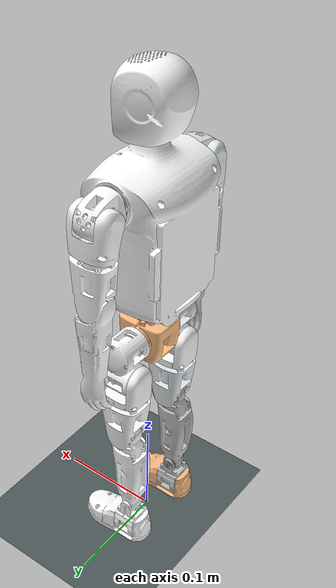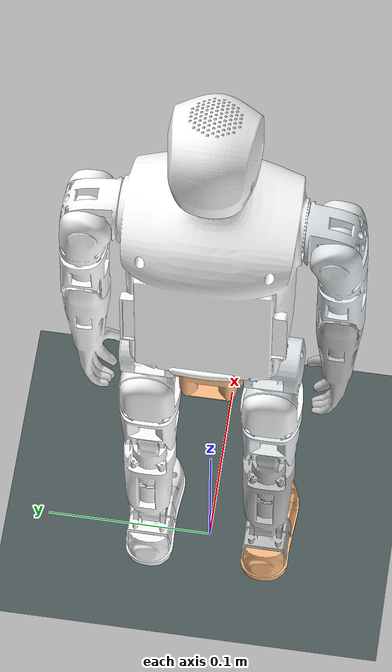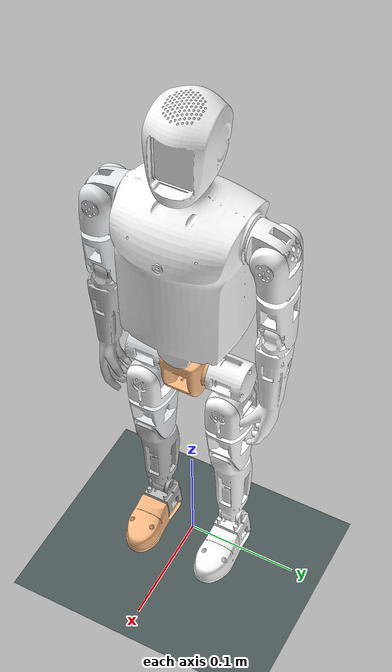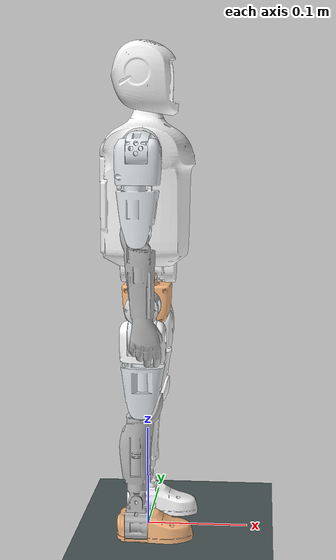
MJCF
<?xml version='1.0' encoding='utf-8'?>
<mujoco model="g0_unitree_mujoco_style">
  <option timestep="0.005" gravity="0 0 -9.81" />
  <compiler angle="radian" />
  <asset>
    <mesh name="base_link" content_type="model/stl" file="../../source/g0_robot_lab/g0_robot_lab/assets/robots/g0/meshes/base_link.STL" />
    <mesh name="waist_yaw_link" content_type="model/stl" file="../../source/g0_robot_lab/g0_robot_lab/assets/robots/g0/meshes/waist_yaw_link.STL" />
    <mesh name="torso_link" content_type="model/stl" file="../../source/g0_robot_lab/g0_robot_lab/assets/robots/g0/meshes/torso_link.STL" />
    <mesh name="l_shoulder_pitch_link" content_type="model/stl" file="../../source/g0_robot_lab/g0_robot_lab/assets/robots/g0/meshes/l_shoulder_pitch_link.STL" />
    <mesh name="l_shoulder_roll_link" content_type="model/stl" file="../../source/g0_robot_lab/g0_robot_lab/assets/robots/g0/meshes/l_shoulder_roll_link.STL" />
    <mesh name="l_shoulder_yaw_link" content_type="model/stl" file="../../source/g0_robot_lab/g0_robot_lab/assets/robots/g0/meshes/l_shoulder_yaw_link.STL" />
    <mesh name="l_forearm_link" content_type="model/stl" file="../../source/g0_robot_lab/g0_robot_lab/assets/robots/g0/meshes/l_forearm_link.STL" />
    <mesh name="r_shoulder_pitch_link" content_type="model/stl" file="../../source/g0_robot_lab/g0_robot_lab/assets/robots/g0/meshes/r_shoulder_pitch_link.STL" />
    <mesh name="r_shoulder_roll_link" content_type="model/stl" file="../../source/g0_robot_lab/g0_robot_lab/assets/robots/g0/meshes/r_shoulder_roll_link.STL" />
    <mesh name="r_shoulder_yaw_link" content_type="model/stl" file="../../source/g0_robot_lab/g0_robot_lab/assets/robots/g0/meshes/r_shoulder_yaw_link.STL" />
    <mesh name="r_forearm_link" content_type="model/stl" file="../../source/g0_robot_lab/g0_robot_lab/assets/robots/g0/meshes/r_forearm_link.STL" />
    <mesh name="l_hip_pitch_link" content_type="model/stl" file="../../source/g0_robot_lab/g0_robot_lab/assets/robots/g0/meshes/l_hip_pitch_link.STL" />
    <mesh name="l_hip_roll_link" content_type="model/stl" file="../../source/g0_robot_lab/g0_robot_lab/assets/robots/g0/meshes/l_hip_roll_link.STL" />
    <mesh name="l_thigh_link" content_type="model/stl" file="../../source/g0_robot_lab/g0_robot_lab/assets/robots/g0/meshes/l_thigh_link.STL" />
    <mesh name="l_calf_link" content_type="model/stl" file="../../source/g0_robot_lab/g0_robot_lab/assets/robots/g0/meshes/l_calf_link.STL" />
    <mesh name="l_ankle_pitch_link" content_type="model/stl" file="../../source/g0_robot_lab/g0_robot_lab/assets/robots/g0/meshes/l_ankle_pitch_link.STL" />
    <mesh name="l_foot_link" content_type="model/stl" file="../../source/g0_robot_lab/g0_robot_lab/assets/robots/g0/meshes/l_foot_link.STL" />
    <mesh name="r_hip_pitch_link" content_type="model/stl" file="../../source/g0_robot_lab/g0_robot_lab/assets/robots/g0/meshes/r_hip_pitch_link.STL" />
    <mesh name="r_hip_roll_link" content_type="model/stl" file="../../source/g0_robot_lab/g0_robot_lab/assets/robots/g0/meshes/r_hip_roll_link.STL" />
    <mesh name="r_thigh_link" content_type="model/stl" file="../../source/g0_robot_lab/g0_robot_lab/assets/robots/g0/meshes/r_thigh_link.STL" />
    <mesh name="r_calf_link" content_type="model/stl" file="../../source/g0_robot_lab/g0_robot_lab/assets/robots/g0/meshes/r_calf_link.STL" />
    <mesh name="r_ankle_pitch_link" content_type="model/stl" file="../../source/g0_robot_lab/g0_robot_lab/assets/robots/g0/meshes/r_ankle_pitch_link.STL" />
    <mesh name="r_foot_link" content_type="model/stl" file="../../source/g0_robot_lab/g0_robot_lab/assets/robots/g0/meshes/r_foot_link.STL" />
  </asset>
  <worldbody>
    <geom name="ground" type="plane" size="2 2 0.05" rgba="0.3 0.35 0.35 1" contype="1" conaffinity="2" />
    <body name="base_link" pos="0 0 0.23">
      <freejoint name="root" />
      <geom type="mesh" rgba="0.988235 0.737255 0.517647 1" mesh="base_link" contype="2" conaffinity="1" />
      <body name="waist_yaw_link" pos="0 1.38738e-05 0.0194282">
        <inertial pos="3.06768e-05 -1.46125e-05 -0.0128823" quat="0.999999 -0.000574074 -0.000872455 -0.000163067" mass="0.0352857" diaginertia="4.65159e-06 4.40144e-06 2.3235e-06" />
        <joint name="waist_yaw_joint" pos="0 0 0" axis="0 0 -1" range="-1.2 1.2" actuatorfrcrange="-2 2" damping="0.08" armature="0.0015" />
        <geom type="mesh" rgba="0.988235 0.737255 0.517647 1" mesh="waist_yaw_link" contype="2" conaffinity="1" />
        <body name="torso_link" pos="0.019949 -2.77476e-05 0.014501">
          <inertial pos="-0.02639 -6.1e-05 0.071032" quat="0.654879 -0.0187365 -0.0179598 0.755288" mass="0.863095" diaginertia="0.0174216 0.0174054 0.0162118" />
          <joint name="waist_roll_joint" pos="0 0 0" axis="-1 0 0" range="-0.5 0.5" actuatorfrcrange="-2 2" damping="0.08" armature="0.0015" />
          <geom type="mesh" rgba="1 1 1 1" mesh="torso_link" contype="2" conaffinity="1" />
          <body name="l_shoulder_pitch_link" pos="-0.0199821 0.049803 0.117056">
            <inertial pos="0.000100024 -0.0111807 -0.000210858" quat="0.725101 0.688628 -0.00345533 0.00288736" mass="0.0379707" diaginertia="5.23076e-06 4.74163e-06 2.72019e-06" />
            <joint name="l_shoulder_pitch_joint" pos="0 0 0" axis="0 -1 0" range="-1.2 1.2" actuatorfrcrange="-2 2" damping="0.06" armature="0.0015" />
            <geom type="mesh" rgba="1 1 1 1" mesh="l_shoulder_pitch_link" contype="2" conaffinity="1" />
            <body name="l_shoulder_roll_link" pos="0.017974 0.0187407 -0.00533316">
              <inertial pos="-0.0174665 0.000725897 -0.00473068" quat="0.517522 0.475153 0.357938 0.615046" mass="0.0467895" diaginertia="6.65599e-06 6.01767e-06 4.15197e-06" />
              <joint name="l_shoulder_roll_joint" pos="0 0 0" axis="-1 0 0" range="-1.2 0" actuatorfrcrange="-2 2" damping="0.06" armature="0.0015" />
              <geom type="mesh" rgba="1 1 1 1" mesh="l_shoulder_roll_link" contype="2" conaffinity="1" />
              <body name="l_shoulder_yaw_link" pos="-0.0204659 0.00301291 -0.0235668">
                <inertial pos="0.00139018 5.66678e-05 -0.0213976" quat="0.723588 0.024997 0.024451 0.689345" mass="0.0424984" diaginertia="6.90276e-06 6.65692e-06 3.64122e-06" />
                <joint name="l_shoulder_yaw_joint" pos="0 0 0" axis="0 0 -1" range="-1.2 1.2" actuatorfrcrange="-2 2" damping="0.06" armature="0.0015" />
                <geom type="mesh" rgba="1 1 1 1" mesh="l_shoulder_yaw_link" contype="2" conaffinity="1" />
                <body name="l_forearm_link" pos="0.00450103 -0.00929168 -0.05105">
                  <inertial pos="0.000938813 0.00889797 -0.0541149" quat="0.751979 -0.0639263 -0.0613421 0.653206" mass="0.0306315" diaginertia="1.11401e-05 1.0587e-05 2.37387e-06" />
                  <joint name="l_elbow_pitch_joint" pos="0 0 0" axis="0 -1 0" range="0 1.2" actuatorfrcrange="-2 2" damping="0.08" armature="0.002041666667" />
                  <geom type="mesh" rgba="1 1 1 1" mesh="l_forearm_link" contype="2" conaffinity="1" />
                </body>
              </body>
            </body>
          </body>
          <body name="r_shoulder_pitch_link" pos="-0.0199821 -0.0497753 0.117056">
            <inertial pos="0.00010006 0.0111805 -0.000210872" quat="0.688628 0.725101 -0.00289507 0.00345975" mass="0.037971" diaginertia="5.23079e-06 4.74165e-06 2.72019e-06" />
            <joint name="r_shoulder_pitch_joint" pos="0 0 0" axis="0 1 0" range="-1.2 1.2" actuatorfrcrange="-2 2" damping="0.06" armature="0.0015" />
            <geom type="mesh" rgba="0.898039 0.917647 0.929412 1" mesh="r_shoulder_pitch_link" contype="2" conaffinity="1" />
            <body name="r_shoulder_roll_link" pos="0.017974 -0.0187407 -0.00533316">
              <inertial pos="-0.0176331 -0.00192776 -0.0130575" quat="0.464736 0.526644 0.449031 0.552302" mass="0.0467895" diaginertia="1.05324e-05 7.87109e-06 6.17646e-06" />
              <joint name="r_shoulder_roll_joint" pos="0 0 0" axis="-1 0 0" range="0 1.2" actuatorfrcrange="-2 2" damping="0.06" armature="0.0015" />
              <geom type="mesh" rgba="0.898039 0.917647 0.929412 1" mesh="r_shoulder_roll_link" contype="2" conaffinity="1" />
              <body name="r_shoulder_yaw_link" pos="-0.0204659 -0.00301291 -0.0235668">
                <inertial pos="0.00138989 -5.65824e-05 -0.0213978" quat="0.689172 0.0244466 0.0250151 0.723754" mass="0.0424982" diaginertia="6.90271e-06 6.65692e-06 3.64111e-06" />
                <joint name="r_shoulder_yaw_joint" pos="0 0 0" axis="0 0 -1" range="-1.2 1.2" actuatorfrcrange="-2 2" damping="0.06" armature="0.0015" />
                <geom type="mesh" rgba="0.898039 0.917647 0.929412 1" mesh="r_shoulder_yaw_link" contype="2" conaffinity="1" />
                <body name="r_forearm_link" pos="0.00450103 0.00929168 -0.05105">
                  <inertial pos="0.00093988 -0.00889177 -0.0541355" quat="0.652571 -0.0616671 -0.063743 0.75252" mass="0.0306133" diaginertia="1.1127e-05 1.05732e-05 2.37142e-06" />
                  <joint name="r_elbow_pitch_joint" pos="0 0 0" axis="0 1 0" range="-1.2 0" actuatorfrcrange="-2 2" damping="0.08" armature="0.002041666667" />
                  <geom type="mesh" rgba="0.74902 0.74902 0.74902 1" mesh="r_forearm_link" contype="2" conaffinity="1" />
                </body>
              </body>
            </body>
          </body>
        </body>
      </body>
      <body name="l_hip_pitch_link" pos="1.38715e-05 0.014 0">
        <inertial pos="-4.56498e-05 0.0193263 -0.00376131" quat="0.989049 0.147548 0.00343517 -0.000578221" mass="0.0438357" diaginertia="8.03396e-06 6.01219e-06 5.76833e-06" />
        <joint name="l_hip_pitch_joint" pos="0 0 0" axis="0 1 0" range="-0.75 0.75" actuatorfrcrange="-2 2" damping="0.18" armature="0.0015" />
        <geom type="mesh" rgba="1 1 1 1" mesh="l_hip_pitch_link" contype="2" conaffinity="1" />
        <body name="l_hip_roll_link" pos="0.0170347 0.0216861 -0.0279057">
          <inertial pos="-0.0176846 -2.84231e-05 -0.00397011" quat="0.611518 0.387561 0.465429 0.509135" mass="0.0461629" diaginertia="6.36385e-06 6.32976e-06 4.49579e-06" />
          <joint name="l_hip_roll_joint" pos="0 0 0" axis="-1 0 0" range="-0.75 0" actuatorfrcrange="-2 2" damping="0.16" armature="0.0015" />
          <geom type="mesh" rgba="1 1 1 1" mesh="l_hip_roll_link" contype="2" conaffinity="1" />
          <body name="l_thigh_link" pos="-0.0170476 0 -0.019999">
            <inertial pos="-0.000626328 2.99418e-05 -0.0221115" quat="0.983981 0.00116893 -0.0095889 -0.178014" mass="0.0500162" diaginertia="9.28213e-06 9.25463e-06 6.11223e-06" />
            <joint name="l_hip_yaw_joint" pos="0 0 0" axis="0 0 -1" range="-1 1" actuatorfrcrange="-2 2" damping="0.1" armature="0.0015" />
            <geom type="mesh" rgba="1 1 1 1" mesh="l_thigh_link" contype="2" conaffinity="1" />
            <body name="l_calf_link" pos="-0.00680103 -0.00973613 -0.0488892">
              <inertial pos="0.0021546 0.00959408 -0.0383603" quat="0.696534 0.133156 0.133175 0.692369" mass="0.0287721" diaginertia="1.1984e-05 1.1922e-05 3.45578e-06" />
              <joint name="l_knee_pitch_joint" pos="0 0 0" axis="0 -1 0" range="-0.75 0" actuatorfrcrange="-2 2" damping="0.26" armature="0.002041666667" />
              <geom type="mesh" rgba="1 1 1 1" mesh="l_calf_link" contype="2" conaffinity="1" />
              <body name="l_ankle_pitch_link" pos="0 0 -0.0944">
                <inertial pos="0.00172316 0.00976531 -0.0244489" quat="0.337759 0.621266 0.337389 0.621382" mass="0.0350557" diaginertia="4.24166e-06 4.23009e-06 2.34957e-06" />
                <joint name="l_ankle_pitch_joint" pos="0 0 0" axis="0 -1 0" range="-0.75 0.75" actuatorfrcrange="-2 2" damping="0.22" armature="0.002041666667" />
                <geom type="mesh" rgba="1 1 1 1" mesh="l_ankle_pitch_link" contype="2" conaffinity="1" />
                <body name="l_foot_link" pos="0.01945 0.00973613 -0.0255876">
                  <inertial pos="0.0048048 7.44073e-05 -0.00685214" quat="0.0132834 0.750689 -0.0441976 0.659042" mass="0.0269172" diaginertia="5.37255e-06 4.80468e-06 3.07133e-06" />
                  <joint name="l_ankle_roll_joint" pos="0 0 0" axis="-1 0 0" range="-0.75 0.75" actuatorfrcrange="-2 2" damping="0.15" armature="0.0015" />
                  <geom type="mesh" rgba="1 1 1 1" mesh="l_foot_link" contype="2" conaffinity="1" />
                </body>
              </body>
            </body>
          </body>
        </body>
      </body>
      <body name="r_hip_pitch_link" pos="1.38715e-05 -0.014 0">
        <inertial pos="-4.58727e-05 -0.0193262 -0.00376135" quat="0.989055 -0.147509 0.00343836 0.000555898" mass="0.0438358" diaginertia="8.03391e-06 6.01213e-06 5.7683e-06" />
        <joint name="r_hip_pitch_joint" pos="0 0 0" axis="0 -1 0" range="-0.75 0.75" actuatorfrcrange="-2 2" damping="0.18" armature="0.0015" />
        <geom type="mesh" rgba="0.898039 0.917647 0.929412 1" mesh="r_hip_pitch_link" contype="2" conaffinity="1" />
        <body name="r_hip_roll_link" pos="0.0170347 -0.0216861 -0.0279057">
          <inertial pos="-0.0176844 2.85775e-05 -0.0039696" quat="0.510197 0.464721 0.388307 0.610697" mass="0.0461658" diaginertia="6.36494e-06 6.33003e-06 4.49662e-06" />
          <joint name="r_hip_roll_joint" pos="0 0 0" axis="-1 0 0" range="0 0.75" actuatorfrcrange="-2 2" damping="0.16" armature="0.0015" />
          <geom type="mesh" rgba="1 1 1 1" mesh="r_hip_roll_link" contype="2" conaffinity="1" />
          <body name="r_thigh_link" pos="-0.0170476 0 -0.019999">
            <inertial pos="-0.000627664 -3.06691e-05 -0.0221801" quat="0.982919 -0.00123872 -0.00962899 0.183783" mass="0.0498744" diaginertia="9.28018e-06 9.25145e-06 6.10729e-06" />
            <joint name="r_hip_yaw_joint" pos="0 0 0" axis="0 0 -1" range="-1 1" actuatorfrcrange="-2 2" damping="0.1" armature="0.0015" />
            <geom type="mesh" rgba="0.898039 0.917647 0.929412 1" mesh="r_thigh_link" contype="2" conaffinity="1" />
            <body name="r_calf_link" pos="-0.00680103 0.00973613 -0.0488892">
              <inertial pos="0.00215323 -0.0095924 -0.0383605" quat="0.694736 0.132747 0.133597 0.69417" mass="0.0287769" diaginertia="1.19849e-05 1.19228e-05 3.45706e-06" />
              <joint name="r_knee_pitch_joint" pos="0 0 0" axis="0 1 0" range="0 0.75" actuatorfrcrange="-2 2" damping="0.26" armature="0.002041666667" />
              <geom type="mesh" rgba="0.74902 0.74902 0.74902 1" mesh="r_calf_link" contype="2" conaffinity="1" />
              <body name="r_ankle_pitch_link" pos="0 0 -0.0944">
                <inertial pos="0.00172316 -0.0097653 -0.0244489" quat="0.621386 0.337383 0.62127 0.337752" mass="0.0350557" diaginertia="4.24166e-06 4.23009e-06 2.34957e-06" />
                <joint name="r_ankle_pitch_joint" pos="0 0 0" axis="0 1 0" range="-0.75 0.75" actuatorfrcrange="-2 2" damping="0.22" armature="0.002041666667" />
                <geom type="mesh" rgba="0.74902 0.74902 0.74902 1" mesh="r_ankle_pitch_link" contype="2" conaffinity="1" />
                <body name="r_foot_link" pos="0.01945 -0.00973613 -0.0255876">
                  <inertial pos="0.0048049 -7.47975e-05 -0.00685149" quat="-0.0133261 0.750708 0.044241 0.659017" mass="0.0269181" diaginertia="5.37266e-06 4.80468e-06 3.07178e-06" />
                  <joint name="r_ankle_roll_joint" pos="0 0 0" axis="-1 0 0" range="-0.75 0.75" actuatorfrcrange="-2 2" damping="0.15" armature="0.0015" />
                  <geom type="mesh" rgba="0.988235 0.737255 0.517647 1" mesh="r_foot_link" contype="2" conaffinity="1" />
                </body>
              </body>
            </body>
          </body>
        </body>
      </body>
      <site name="imu" pos="0 0 0" quat="1 0 0 0" size="0.01" rgba="0 1 0 0.35" />
    </body>
  </worldbody>
  <actuator>
    <!--Unitree-style torque motors in G0_JOINT_SDK_NAMES order.-->
    <motor name="l_hip_pitch_joint" joint="l_hip_pitch_joint" gear="1" forcelimited="true" forcerange="-0.5 0.5" />
    <motor name="l_hip_roll_joint" joint="l_hip_roll_joint" gear="1" forcelimited="true" forcerange="-0.5 0.5" />
    <motor name="l_hip_yaw_joint" joint="l_hip_yaw_joint" gear="1" forcelimited="true" forcerange="-0.5 0.5" />
    <motor name="l_knee_pitch_joint" joint="l_knee_pitch_joint" gear="1" forcelimited="true" forcerange="-0.583333333333 0.583333333333" />
    <motor name="l_ankle_pitch_joint" joint="l_ankle_pitch_joint" gear="1" forcelimited="true" forcerange="-0.583333333333 0.583333333333" />
    <motor name="l_ankle_roll_joint" joint="l_ankle_roll_joint" gear="1" forcelimited="true" forcerange="-0.5 0.5" />
    <motor name="r_hip_pitch_joint" joint="r_hip_pitch_joint" gear="1" forcelimited="true" forcerange="-0.5 0.5" />
    <motor name="r_hip_roll_joint" joint="r_hip_roll_joint" gear="1" forcelimited="true" forcerange="-0.5 0.5" />
    <motor name="r_hip_yaw_joint" joint="r_hip_yaw_joint" gear="1" forcelimited="true" forcerange="-0.5 0.5" />
    <motor name="r_knee_pitch_joint" joint="r_knee_pitch_joint" gear="1" forcelimited="true" forcerange="-0.583333333333 0.583333333333" />
    <motor name="r_ankle_pitch_joint" joint="r_ankle_pitch_joint" gear="1" forcelimited="true" forcerange="-0.583333333333 0.583333333333" />
    <motor name="r_ankle_roll_joint" joint="r_ankle_roll_joint" gear="1" forcelimited="true" forcerange="-0.5 0.5" />
    <motor name="waist_yaw_joint" joint="waist_yaw_joint" gear="1" forcelimited="true" forcerange="-0.5 0.5" />
    <motor name="waist_roll_joint" joint="waist_roll_joint" gear="1" forcelimited="true" forcerange="-0.5 0.5" />
    <motor name="l_shoulder_pitch_joint" joint="l_shoulder_pitch_joint" gear="1" forcelimited="true" forcerange="-0.5 0.5" />
    <motor name="l_shoulder_roll_joint" joint="l_shoulder_roll_joint" gear="1" forcelimited="true" forcerange="-0.5 0.5" />
    <motor name="l_shoulder_yaw_joint" joint="l_shoulder_yaw_joint" gear="1" forcelimited="true" forcerange="-0.5 0.5" />
    <motor name="l_elbow_pitch_joint" joint="l_elbow_pitch_joint" gear="1" forcelimited="true" forcerange="-0.583333333333 0.583333333333" />
    <motor name="r_shoulder_pitch_joint" joint="r_shoulder_pitch_joint" gear="1" forcelimited="true" forcerange="-0.5 0.5" />
    <motor name="r_shoulder_roll_joint" joint="r_shoulder_roll_joint" gear="1" forcelimited="true" forcerange="-0.5 0.5" />
    <motor name="r_shoulder_yaw_joint" joint="r_shoulder_yaw_joint" gear="1" forcelimited="true" forcerange="-0.5 0.5" />
    <motor name="r_elbow_pitch_joint" joint="r_elbow_pitch_joint" gear="1" forcelimited="true" forcerange="-0.583333333333 0.583333333333" />
  </actuator>
  <sensor>
    <!--Sensor order mirrors unitree_mujoco: q, dq, tau_est for all motors, then IMU/frame.-->
    <jointpos name="l_hip_pitch_joint_pos" joint="l_hip_pitch_joint" />
    <jointpos name="l_hip_roll_joint_pos" joint="l_hip_roll_joint" />
    <jointpos name="l_hip_yaw_joint_pos" joint="l_hip_yaw_joint" />
    <jointpos name="l_knee_pitch_joint_pos" joint="l_knee_pitch_joint" />
    <jointpos name="l_ankle_pitch_joint_pos" joint="l_ankle_pitch_joint" />
    <jointpos name="l_ankle_roll_joint_pos" joint="l_ankle_roll_joint" />
    <jointpos name="r_hip_pitch_joint_pos" joint="r_hip_pitch_joint" />
    <jointpos name="r_hip_roll_joint_pos" joint="r_hip_roll_joint" />
    <jointpos name="r_hip_yaw_joint_pos" joint="r_hip_yaw_joint" />
    <jointpos name="r_knee_pitch_joint_pos" joint="r_knee_pitch_joint" />
    <jointpos name="r_ankle_pitch_joint_pos" joint="r_ankle_pitch_joint" />
    <jointpos name="r_ankle_roll_joint_pos" joint="r_ankle_roll_joint" />
    <jointpos name="waist_yaw_joint_pos" joint="waist_yaw_joint" />
    <jointpos name="waist_roll_joint_pos" joint="waist_roll_joint" />
    <jointpos name="l_shoulder_pitch_joint_pos" joint="l_shoulder_pitch_joint" />
    <jointpos name="l_shoulder_roll_joint_pos" joint="l_shoulder_roll_joint" />
    <jointpos name="l_shoulder_yaw_joint_pos" joint="l_shoulder_yaw_joint" />
    <jointpos name="l_elbow_pitch_joint_pos" joint="l_elbow_pitch_joint" />
    <jointpos name="r_shoulder_pitch_joint_pos" joint="r_shoulder_pitch_joint" />
    <jointpos name="r_shoulder_roll_joint_pos" joint="r_shoulder_roll_joint" />
    <jointpos name="r_shoulder_yaw_joint_pos" joint="r_shoulder_yaw_joint" />
    <jointpos name="r_elbow_pitch_joint_pos" joint="r_elbow_pitch_joint" />
    <jointvel name="l_hip_pitch_joint_vel" joint="l_hip_pitch_joint" />
    <jointvel name="l_hip_roll_joint_vel" joint="l_hip_roll_joint" />
    <jointvel name="l_hip_yaw_joint_vel" joint="l_hip_yaw_joint" />
    <jointvel name="l_knee_pitch_joint_vel" joint="l_knee_pitch_joint" />
    <jointvel name="l_ankle_pitch_joint_vel" joint="l_ankle_pitch_joint" />
    <jointvel name="l_ankle_roll_joint_vel" joint="l_ankle_roll_joint" />
    <jointvel name="r_hip_pitch_joint_vel" joint="r_hip_pitch_joint" />
    <jointvel name="r_hip_roll_joint_vel" joint="r_hip_roll_joint" />
    <jointvel name="r_hip_yaw_joint_vel" joint="r_hip_yaw_joint" />
    <jointvel name="r_knee_pitch_joint_vel" joint="r_knee_pitch_joint" />
    <jointvel name="r_ankle_pitch_joint_vel" joint="r_ankle_pitch_joint" />
    <jointvel name="r_ankle_roll_joint_vel" joint="r_ankle_roll_joint" />
    <jointvel name="waist_yaw_joint_vel" joint="waist_yaw_joint" />
    <jointvel name="waist_roll_joint_vel" joint="waist_roll_joint" />
    <jointvel name="l_shoulder_pitch_joint_vel" joint="l_shoulder_pitch_joint" />
    <jointvel name="l_shoulder_roll_joint_vel" joint="l_shoulder_roll_joint" />
    <jointvel name="l_shoulder_yaw_joint_vel" joint="l_shoulder_yaw_joint" />
    <jointvel name="l_elbow_pitch_joint_vel" joint="l_elbow_pitch_joint" />
    <jointvel name="r_shoulder_pitch_joint_vel" joint="r_shoulder_pitch_joint" />
    <jointvel name="r_shoulder_roll_joint_vel" joint="r_shoulder_roll_joint" />
    <jointvel name="r_shoulder_yaw_joint_vel" joint="r_shoulder_yaw_joint" />
    <jointvel name="r_elbow_pitch_joint_vel" joint="r_elbow_pitch_joint" />
    <jointactuatorfrc name="l_hip_pitch_joint_torque" joint="l_hip_pitch_joint" />
    <jointactuatorfrc name="l_hip_roll_joint_torque" joint="l_hip_roll_joint" />
    <jointactuatorfrc name="l_hip_yaw_joint_torque" joint="l_hip_yaw_joint" />
    <jointactuatorfrc name="l_knee_pitch_joint_torque" joint="l_knee_pitch_joint" />
    <jointactuatorfrc name="l_ankle_pitch_joint_torque" joint="l_ankle_pitch_joint" />
    <jointactuatorfrc name="l_ankle_roll_joint_torque" joint="l_ankle_roll_joint" />
    <jointactuatorfrc name="r_hip_pitch_joint_torque" joint="r_hip_pitch_joint" />
    <jointactuatorfrc name="r_hip_roll_joint_torque" joint="r_hip_roll_joint" />
    <jointactuatorfrc name="r_hip_yaw_joint_torque" joint="r_hip_yaw_joint" />
    <jointactuatorfrc name="r_knee_pitch_joint_torque" joint="r_knee_pitch_joint" />
    <jointactuatorfrc name="r_ankle_pitch_joint_torque" joint="r_ankle_pitch_joint" />
    <jointactuatorfrc name="r_ankle_roll_joint_torque" joint="r_ankle_roll_joint" />
    <jointactuatorfrc name="waist_yaw_joint_torque" joint="waist_yaw_joint" />
    <jointactuatorfrc name="waist_roll_joint_torque" joint="waist_roll_joint" />
    <jointactuatorfrc name="l_shoulder_pitch_joint_torque" joint="l_shoulder_pitch_joint" />
    <jointactuatorfrc name="l_shoulder_roll_joint_torque" joint="l_shoulder_roll_joint" />
    <jointactuatorfrc name="l_shoulder_yaw_joint_torque" joint="l_shoulder_yaw_joint" />
    <jointactuatorfrc name="l_elbow_pitch_joint_torque" joint="l_elbow_pitch_joint" />
    <jointactuatorfrc name="r_shoulder_pitch_joint_torque" joint="r_shoulder_pitch_joint" />
    <jointactuatorfrc name="r_shoulder_roll_joint_torque" joint="r_shoulder_roll_joint" />
    <jointactuatorfrc name="r_shoulder_yaw_joint_torque" joint="r_shoulder_yaw_joint" />
    <jointactuatorfrc name="r_elbow_pitch_joint_torque" joint="r_elbow_pitch_joint" />
    <framequat name="imu_quat" objtype="site" objname="imu" />
    <gyro name="imu_gyro" site="imu" />
    <accelerometer name="imu_acc" site="imu" />
    <framepos name="frame_pos" objtype="site" objname="imu" />
    <framelinvel name="frame_vel" objtype="site" objname="imu" />
  </sensor>
</mujoco>
